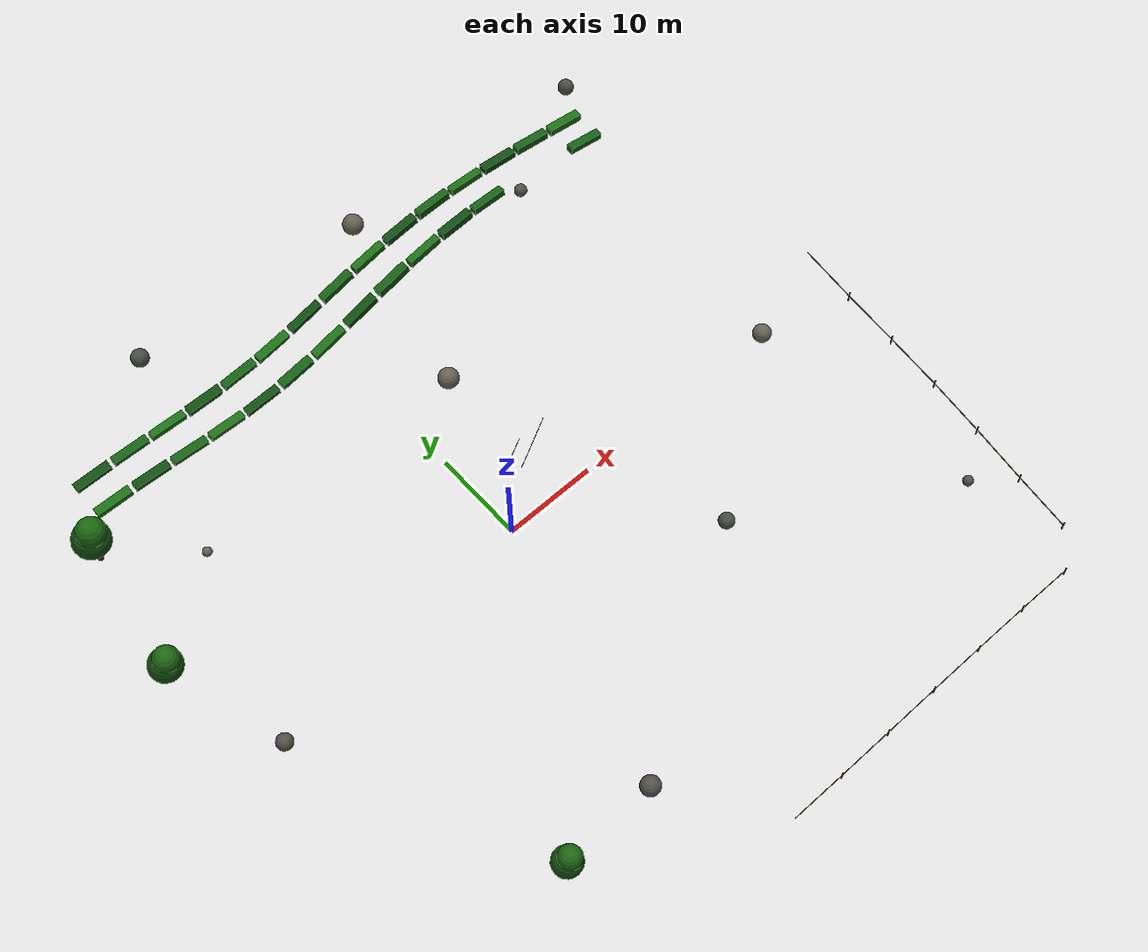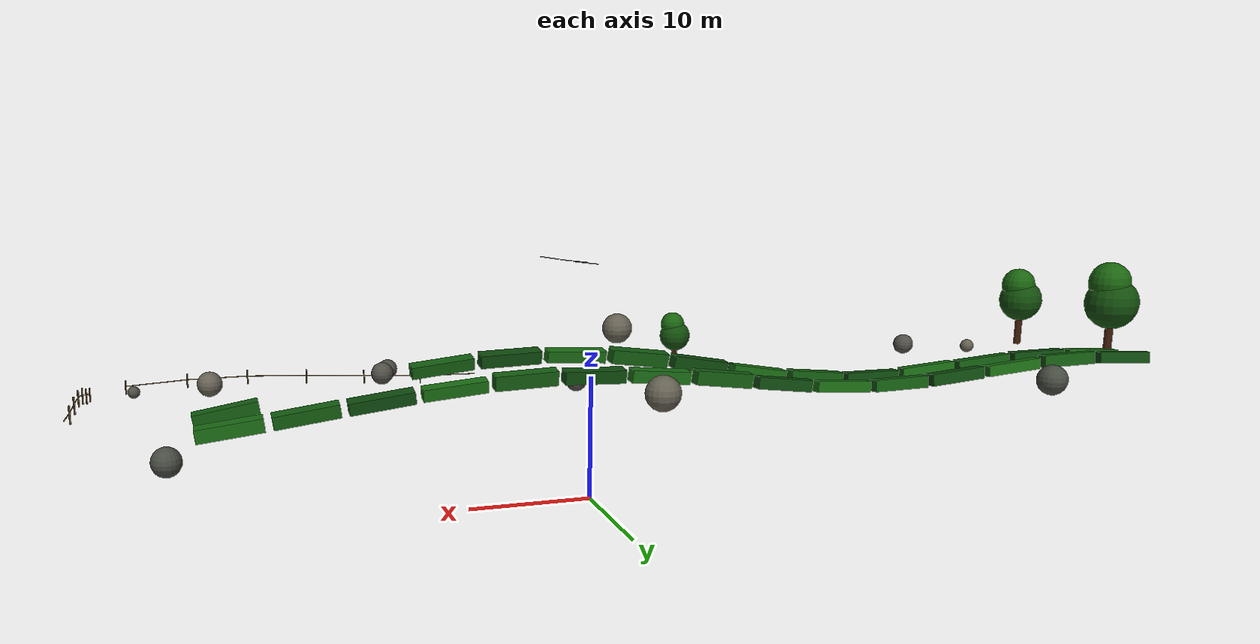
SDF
<sdf version="1.6">
 <world name="mountain_tea_garden_80m">
  <model name="tea_row_14">
   <static>true</static>
   <link name="bush_00">
    <pose>-29 21.1486 14.5462 0.123142 -0.0605314 -0.0586013</pose>
    <collision name="collision">
     <geometry><box><size>3.75 0.892647 0.723056</size></box></geometry>
     <laser_retro>55</laser_retro>
     <surface><friction><ode><mu>1.15</mu><mu2>1.15</mu2></ode></friction></surface>
    </collision>
    <visual name="visual">
     <geometry><box><size>3.75 0.892647 0.723056</size></box></geometry>
     <material>
      <ambient>0.1 0.42 0.075 1</ambient>
      <diffuse>0.1 0.42 0.075 1</diffuse>
      <specular>0.05 0.05 0.05 1</specular>
     </material>
    </visual>
   </link>
   <link name="bush_01">
    <pose>-24.85 20.9266 14.6432 0.10503 0.0156587 -0.0471361</pose>
    <collision name="collision">
     <geometry><box><size>3.75 0.841962 0.712765</size></box></geometry>
     <laser_retro>55</laser_retro>
     <surface><friction><ode><mu>1.15</mu><mu2>1.15</mu2></ode></friction></surface>
    </collision>
    <visual name="visual">
     <geometry><box><size>3.75 0.841962 0.712765</size></box></geometry>
     <material>
      <ambient>0.055 0.29 0.055 1</ambient>
      <diffuse>0.055 0.29 0.055 1</diffuse>
      <specular>0.05 0.05 0.05 1</specular>
     </material>
    </visual>
   </link>
   <link name="bush_02">
    <pose>-20.7 20.7655 14.4231 0.0957155 0.0792144 -0.0295885</pose>
    <collision name="collision">
     <geometry><box><size>3.75 0.793256 0.701677</size></box></geometry>
     <laser_retro>55</laser_retro>
     <surface><friction><ode><mu>1.15</mu><mu2>1.15</mu2></ode></friction></surface>
    </collision>
    <visual name="visual">
     <geometry><box><size>3.75 0.793256 0.701677</size></box></geometry>
     <material>
      <ambient>0.075 0.36 0.065 1</ambient>
      <diffuse>0.075 0.36 0.065 1</diffuse>
      <specular>0.05 0.05 0.05 1</specular>
     </material>
    </visual>
   </link>
   <link name="bush_03">
    <pose>-16.55 20.6862 14.1144 0.0897245 0.0711278 -0.00821036</pose>
    <collision name="collision">
     <geometry><box><size>3.75 0.766633 0.768349</size></box></geometry>
     <laser_retro>55</laser_retro>
     <surface><friction><ode><mu>1.15</mu><mu2>1.15</mu2></ode></friction></surface>
    </collision>
    <visual name="visual">
     <geometry><box><size>3.75 0.766633 0.768349</size></box></geometry>
     <material>
      <ambient>0.1 0.42 0.075 1</ambient>
      <diffuse>0.1 0.42 0.075 1</diffuse>
      <specular>0.05 0.05 0.05 1</specular>
     </material>
    </visual>
   </link>
   <link name="bush_04">
    <pose>-12.4 20.6989 13.9441 0.0747903 -0.0092089 0.0142328</pose>
    <collision name="collision">
     <geometry><box><size>3.75 0.780026 0.721417</size></box></geometry>
     <laser_retro>55</laser_retro>
     <surface><friction><ode><mu>1.15</mu><mu2>1.15</mu2></ode></friction></surface>
    </collision>
    <visual name="visual">
     <geometry><box><size>3.75 0.780026 0.721417</size></box></geometry>
     <material>
      <ambient>0.055 0.29 0.055 1</ambient>
      <diffuse>0.055 0.29 0.055 1</diffuse>
      <specular>0.05 0.05 0.05 1</specular>
     </material>
    </visual>
   </link>
   <link name="bush_05">
    <pose>-8.25 20.8018 14.2241 0.0425712 -0.110287 0.0348304</pose>
    <collision name="collision">
     <geometry><box><size>3.75 0.86623 0.776609</size></box></geometry>
     <laser_retro>55</laser_retro>
     <surface><friction><ode><mu>1.15</mu><mu2>1.15</mu2></ode></friction></surface>
    </collision>
    <visual name="visual">
     <geometry><box><size>3.75 0.86623 0.776609</size></box></geometry>
     <material>
      <ambient>0.075 0.36 0.065 1</ambient>
      <diffuse>0.075 0.36 0.065 1</diffuse>
      <specular>0.05 0.05 0.05 1</specular>
     </material>
    </visual>
   </link>
   <link name="bush_06">
    <pose>-4.1 20.9818 14.8208 -0.00532599 -0.177527 0.0509225</pose>
    <collision name="collision">
     <geometry><box><size>3.75 0.822749 0.72909</size></box></geometry>
     <laser_retro>55</laser_retro>
     <surface><friction><ode><mu>1.15</mu><mu2>1.15</mu2></ode></friction></surface>
    </collision>
    <visual name="visual">
     <geometry><box><size>3.75 0.822749 0.72909</size></box></geometry>
     <material>
      <ambient>0.1 0.42 0.075 1</ambient>
      <diffuse>0.1 0.42 0.075 1</diffuse>
      <specular>0.05 0.05 0.05 1</specular>
     </material>
    </visual>
   </link>
   <link name="bush_07">
    <pose>0.05 21.2157 15.6543 -0.0602046 -0.188998 0.0604493</pose>
    <collision name="collision">
     <geometry><box><size>3.75 0.833949 0.814704</size></box></geometry>
     <laser_retro>55</laser_retro>
     <surface><friction><ode><mu>1.15</mu><mu2>1.15</mu2></ode></friction></surface>
    </collision>
    <visual name="visual">
     <geometry><box><size>3.75 0.833949 0.814704</size></box></geometry>
     <material>
      <ambient>0.055 0.29 0.055 1</ambient>
      <diffuse>0.055 0.29 0.055 1</diffuse>
      <specular>0.05 0.05 0.05 1</specular>
     </material>
    </visual>
   </link>
   <link name="bush_08">
    <pose>4.2 21.4733 16.4139 -0.111729 -0.149638 0.0622027</pose>
    <collision name="collision">
     <geometry><box><size>3.75 0.869858 0.880716</size></box></geometry>
     <laser_retro>55</laser_retro>
     <surface><friction><ode><mu>1.15</mu><mu2>1.15</mu2></ode></friction></surface>
    </collision>
    <visual name="visual">
     <geometry><box><size>3.75 0.869858 0.880716</size></box></geometry>
     <material>
      <ambient>0.075 0.36 0.065 1</ambient>
      <diffuse>0.075 0.36 0.065 1</diffuse>
      <specular>0.05 0.05 0.05 1</specular>
     </material>
    </visual>
   </link>
   <link name="bush_09">
    <pose>8.35 21.7215 16.8272 -0.151276 -0.0758995 0.0559613</pose>
    <collision name="collision">
     <geometry><box><size>3.75 0.760535 0.74805</size></box></geometry>
     <laser_retro>55</laser_retro>
     <surface><friction><ode><mu>1.15</mu><mu2>1.15</mu2></ode></friction></surface>
    </collision>
    <visual name="visual">
     <geometry><box><size>3.75 0.760535 0.74805</size></box></geometry>
     <material>
      <ambient>0.1 0.42 0.075 1</ambient>
      <diffuse>0.1 0.42 0.075 1</diffuse>
      <specular>0.05 0.05 0.05 1</specular>
     </material>
    </visual>
   </link>
   <link name="bush_10">
    <pose>12.5 21.9283 16.9816 -0.173066 0.0113255 0.0425144</pose>
    <collision name="collision">
     <geometry><box><size>3.75 0.866523 0.786534</size></box></geometry>
     <laser_retro>55</laser_retro>
     <surface><friction><ode><mu>1.15</mu><mu2>1.15</mu2></ode></friction></surface>
    </collision>
    <visual name="visual">
     <geometry><box><size>3.75 0.866523 0.786534</size></box></geometry>
     <material>
      <ambient>0.055 0.29 0.055 1</ambient>
      <diffuse>0.055 0.29 0.055 1</diffuse>
      <specular>0.05 0.05 0.05 1</specular>
     </material>
    </visual>
   </link>
   <link name="bush_11">
    <pose>16.65 22.067 16.7333 -0.174058 0.0911377 0.0235759</pose>
    <collision name="collision">
     <geometry><box><size>3.75 0.823379 0.727465</size></box></geometry>
     <laser_retro>55</laser_retro>
     <surface><friction><ode><mu>1.15</mu><mu2>1.15</mu2></ode></friction></surface>
    </collision>
    <visual name="visual">
     <geometry><box><size>3.75 0.823379 0.727465</size></box></geometry>
     <material>
      <ambient>0.075 0.36 0.065 1</ambient>
      <diffuse>0.075 0.36 0.065 1</diffuse>
      <specular>0.05 0.05 0.05 1</specular>
     </material>
    </visual>
   </link>
   <link name="bush_14">
    <pose>29.1 21.9523 14.8152 -0.0545727 0.168946 -0.040142</pose>
    <collision name="collision">
     <geometry><box><size>3.75 0.831678 0.735281</size></box></geometry>
     <laser_retro>55</laser_retro>
     <surface><friction><ode><mu>1.15</mu><mu2>1.15</mu2></ode></friction></surface>
    </collision>
    <visual name="visual">
     <geometry><box><size>3.75 0.831678 0.735281</size></box></geometry>
     <material>
      <ambient>0.075 0.36 0.065 1</ambient>
      <diffuse>0.075 0.36 0.065 1</diffuse>
      <specular>0.05 0.05 0.05 1</specular>
     </material>
    </visual>
   </link>
  </model>
  <model name="tea_row_15">
   <static>true</static>
   <link name="bush_00">
    <pose>-29 24.2402 14.9754 0.144876 -0.0483533 -0.044186</pose>
    <collision name="collision">
     <geometry><box><size>3.75 0.843218 0.76625</size></box></geometry>
     <laser_retro>55</laser_retro>
     <surface><friction><ode><mu>1.15</mu><mu2>1.15</mu2></ode></friction></surface>
    </collision>
    <visual name="visual">
     <geometry><box><size>3.75 0.843218 0.76625</size></box></geometry>
     <material>
      <ambient>0.055 0.29 0.055 1</ambient>
      <diffuse>0.055 0.29 0.055 1</diffuse>
      <specular>0.05 0.05 0.05 1</specular>
     </material>
    </visual>
   </link>
   <link name="bush_01">
    <pose>-24.85 24.0935 15.0627 0.128668 0.0205878 -0.0257098</pose>
    <collision name="collision">
     <geometry><box><size>3.75 0.775642 0.807573</size></box></geometry>
     <laser_retro>55</laser_retro>
     <surface><friction><ode><mu>1.15</mu><mu2>1.15</mu2></ode></friction></surface>
    </collision>
    <visual name="visual">
     <geometry><box><size>3.75 0.775642 0.807573</size></box></geometry>
     <material>
      <ambient>0.075 0.36 0.065 1</ambient>
      <diffuse>0.075 0.36 0.065 1</diffuse>
      <specular>0.05 0.05 0.05 1</specular>
     </material>
    </visual>
   </link>
   <link name="bush_02">
    <pose>-20.7 24.0314 14.7866 0.124398 0.079981 -0.00390354</pose>
    <collision name="collision">
     <geometry><box><size>3.75 0.80116 0.704052</size></box></geometry>
     <laser_retro>55</laser_retro>
     <surface><friction><ode><mu>1.15</mu><mu2>1.15</mu2></ode></friction></surface>
    </collision>
    <visual name="visual">
     <geometry><box><size>3.75 0.80116 0.704052</size></box></geometry>
     <material>
      <ambient>0.1 0.42 0.075 1</ambient>
      <diffuse>0.1 0.42 0.075 1</diffuse>
      <specular>0.05 0.05 0.05 1</specular>
     </material>
    </visual>
   </link>
   <link name="bush_03">
    <pose>-16.55 24.0618 14.4671 0.123881 0.0747512 0.0184092</pose>
    <collision name="collision">
     <geometry><box><size>3.75 0.8799 0.76177</size></box></geometry>
     <laser_retro>55</laser_retro>
     <surface><friction><ode><mu>1.15</mu><mu2>1.15</mu2></ode></friction></surface>
    </collision>
    <visual name="visual">
     <geometry><box><size>3.75 0.8799 0.76177</size></box></geometry>
     <material>
      <ambient>0.055 0.29 0.055 1</ambient>
      <diffuse>0.055 0.29 0.055 1</diffuse>
      <specular>0.05 0.05 0.05 1</specular>
     </material>
    </visual>
   </link>
   <link name="bush_04">
    <pose>-12.4 24.1809 14.2818 0.112964 0.00504747 0.0383355</pose>
    <collision name="collision">
     <geometry><box><size>3.75 0.803156 0.754442</size></box></geometry>
     <laser_retro>55</laser_retro>
     <surface><friction><ode><mu>1.15</mu><mu2>1.15</mu2></ode></friction></surface>
    </collision>
    <visual name="visual">
     <geometry><box><size>3.75 0.803156 0.754442</size></box></geometry>
     <material>
      <ambient>0.075 0.36 0.065 1</ambient>
      <diffuse>0.075 0.36 0.065 1</diffuse>
      <specular>0.05 0.05 0.05 1</specular>
     </material>
    </visual>
   </link>
   <link name="bush_05">
    <pose>-8.25 24.3733 14.4242 0.0838419 -0.081392 0.053306</pose>
    <collision name="collision">
     <geometry><box><size>3.75 0.803804 0.713275</size></box></geometry>
     <laser_retro>55</laser_retro>
     <surface><friction><ode><mu>1.15</mu><mu2>1.15</mu2></ode></friction></surface>
    </collision>
    <visual name="visual">
     <geometry><box><size>3.75 0.803804 0.713275</size></box></geometry>
     <material>
      <ambient>0.1 0.42 0.075 1</ambient>
      <diffuse>0.1 0.42 0.075 1</diffuse>
      <specular>0.05 0.05 0.05 1</specular>
     </material>
    </visual>
   </link>
   <link name="bush_06">
    <pose>-4.1 24.6142 14.9061 0.0389877 -0.136076 0.0614082</pose>
    <collision name="collision">
     <geometry><box><size>3.75 0.767284 0.73649</size></box></geometry>
     <laser_retro>55</laser_retro>
     <surface><friction><ode><mu>1.15</mu><mu2>1.15</mu2></ode></friction></surface>
    </collision>
    <visual name="visual">
     <geometry><box><size>3.75 0.767284 0.73649</size></box></geometry>
     <material>
      <ambient>0.055 0.29 0.055 1</ambient>
      <diffuse>0.055 0.29 0.055 1</diffuse>
      <specular>0.05 0.05 0.05 1</specular>
     </material>
    </visual>
   </link>
   <link name="bush_07">
    <pose>0.05 24.8726 15.5741 -0.0135246 -0.141532 0.0616157</pose>
    <collision name="collision">
     <geometry><box><size>3.75 0.792613 0.87642</size></box></geometry>
     <laser_retro>55</laser_retro>
     <surface><friction><ode><mu>1.15</mu><mu2>1.15</mu2></ode></friction></surface>
    </collision>
    <visual name="visual">
     <geometry><box><size>3.75 0.792613 0.87642</size></box></geometry>
     <material>
      <ambient>0.075 0.36 0.065 1</ambient>
      <diffuse>0.075 0.36 0.065 1</diffuse>
      <specular>0.05 0.05 0.05 1</specular>
     </material>
    </visual>
   </link>
   <link name="bush_08">
    <pose>4.2 25.1152 16.0493 -0.0650552 -0.105258 0.0539025</pose>
    <collision name="collision">
     <geometry><box><size>3.75 0.778956 0.771593</size></box></geometry>
     <laser_retro>55</laser_retro>
     <surface><friction><ode><mu>1.15</mu><mu2>1.15</mu2></ode></friction></surface>
    </collision>
    <visual name="visual">
     <geometry><box><size>3.75 0.778956 0.771593</size></box></geometry>
     <material>
      <ambient>0.1 0.42 0.075 1</ambient>
      <diffuse>0.1 0.42 0.075 1</diffuse>
      <specular>0.05 0.05 0.05 1</specular>
     </material>
    </visual>
   </link>
   <link name="bush_09">
    <pose>8.35 25.3108 16.3748 -0.108327 -0.044225 0.0392452</pose>
    <collision name="collision">
     <geometry><box><size>3.75 0.845545 0.789404</size></box></geometry>
     <laser_retro>55</laser_retro>
     <surface><friction><ode><mu>1.15</mu><mu2>1.15</mu2></ode></friction></surface>
    </collision>
    <visual name="visual">
     <geometry><box><size>3.75 0.845545 0.789404</size></box></geometry>
     <material>
      <ambient>0.055 0.29 0.055 1</ambient>
      <diffuse>0.055 0.29 0.055 1</diffuse>
      <specular>0.05 0.05 0.05 1</specular>
     </material>
    </visual>
   </link>
   <link name="bush_10">
    <pose>12.5 25.4341 16.4661 -0.137646 0.023395 0.0195152</pose>
    <collision name="collision">
     <geometry><box><size>3.75 0.772675 0.886743</size></box></geometry>
     <laser_retro>55</laser_retro>
     <surface><friction><ode><mu>1.15</mu><mu2>1.15</mu2></ode></friction></surface>
    </collision>
    <visual name="visual">
     <geometry><box><size>3.75 0.772675 0.886743</size></box></geometry>
     <material>
      <ambient>0.075 0.36 0.065 1</ambient>
      <diffuse>0.075 0.36 0.065 1</diffuse>
      <specular>0.05 0.05 0.05 1</specular>
     </material>
    </visual>
   </link>
   <link name="bush_11">
    <pose>16.65 25.4693 16.1615 -0.148883 0.0819726 -0.00274416</pose>
    <collision name="collision">
     <geometry><box><size>3.75 0.764281 0.726211</size></box></geometry>
     <laser_retro>55</laser_retro>
     <surface><friction><ode><mu>1.15</mu><mu2>1.15</mu2></ode></friction></surface>
    </collision>
    <visual name="visual">
     <geometry><box><size>3.75 0.764281 0.726211</size></box></geometry>
     <material>
      <ambient>0.1 0.42 0.075 1</ambient>
      <diffuse>0.1 0.42 0.075 1</diffuse>
      <specular>0.05 0.05 0.05 1</specular>
     </material>
    </visual>
   </link>
   <link name="bush_12">
    <pose>20.8 25.4118 15.7371 -0.13966 0.120704 -0.0246476</pose>
    <collision name="collision">
     <geometry><box><size>3.75 0.888122 0.737919</size></box></geometry>
     <laser_retro>55</laser_retro>
     <surface><friction><ode><mu>1.15</mu><mu2>1.15</mu2></ode></friction></surface>
    </collision>
    <visual name="visual">
     <geometry><box><size>3.75 0.888122 0.737919</size></box></geometry>
     <material>
      <ambient>0.055 0.29 0.055 1</ambient>
      <diffuse>0.055 0.29 0.055 1</diffuse>
      <specular>0.05 0.05 0.05 1</specular>
     </material>
    </visual>
   </link>
   <link name="bush_13">
    <pose>24.95 25.2691 15.2215 -0.109869 0.134432 -0.043358</pose>
    <collision name="collision">
     <geometry><box><size>3.75 0.838855 0.790381</size></box></geometry>
     <laser_retro>55</laser_retro>
     <surface><friction><ode><mu>1.15</mu><mu2>1.15</mu2></ode></friction></surface>
    </collision>
    <visual name="visual">
     <geometry><box><size>3.75 0.838855 0.790381</size></box></geometry>
     <material>
      <ambient>0.075 0.36 0.065 1</ambient>
      <diffuse>0.075 0.36 0.065 1</diffuse>
      <specular>0.05 0.05 0.05 1</specular>
     </material>
    </visual>
   </link>
   <link name="bush_14">
    <pose>29.1 25.0595 14.6855 -0.0623796 0.123138 -0.0564689</pose>
    <collision name="collision">
     <geometry><box><size>3.75 0.882117 0.811225</size></box></geometry>
     <laser_retro>55</laser_retro>
     <surface><friction><ode><mu>1.15</mu><mu2>1.15</mu2></ode></friction></surface>
    </collision>
    <visual name="visual">
     <geometry><box><size>3.75 0.882117 0.811225</size></box></geometry>
     <material>
      <ambient>0.1 0.42 0.075 1</ambient>
      <diffuse>0.1 0.42 0.075 1</diffuse>
      <specular>0.05 0.05 0.05 1</specular>
     </material>
    </visual>
   </link>
  </model>
  <model name="rock_00">
   <static>true</static>
   <link name="body">
    <pose>-31 -5.5 9.79271 0 0 0</pose>
    <collision name="collision">
     <geometry><sphere><radius>0.845622</radius></sphere></geometry>
     <laser_retro>70</laser_retro>
     <surface><friction><ode><mu>1.15</mu><mu2>1.15</mu2></ode></friction></surface>
    </collision>
    <visual name="visual">
     <geometry><sphere><radius>0.845622</radius></sphere></geometry>
     <material>
      <ambient>0.31 0.3 0.27 1</ambient>
      <diffuse>0.31 0.3 0.27 1</diffuse>
      <specular>0.05 0.05 0.05 1</specular>
     </material>
    </visual>
   </link>
  </model>
  <model name="rock_01">
   <static>true</static>
   <link name="body">
    <pose>-25.5 12 13.4849 0 0 0</pose>
    <collision name="collision">
     <geometry><sphere><radius>0.477506</radius></sphere></geometry>
     <laser_retro>70</laser_retro>
     <surface><friction><ode><mu>1.15</mu><mu2>1.15</mu2></ode></friction></surface>
    </collision>
    <visual name="visual">
     <geometry><sphere><radius>0.477506</radius></sphere></geometry>
     <material>
      <ambient>0.39 0.37 0.32 1</ambient>
      <diffuse>0.39 0.37 0.32 1</diffuse>
      <specular>0.05 0.05 0.05 1</specular>
     </material>
    </visual>
   </link>
  </model>
  <model name="rock_02">
   <static>true</static>
   <link name="body">
    <pose>-18.5 31 15.6521 0 0 0</pose>
    <collision name="collision">
     <geometry><sphere><radius>0.910013</radius></sphere></geometry>
     <laser_retro>70</laser_retro>
     <surface><friction><ode><mu>1.15</mu><mu2>1.15</mu2></ode></friction></surface>
    </collision>
    <visual name="visual">
     <geometry><sphere><radius>0.910013</radius></sphere></geometry>
     <material>
      <ambient>0.27 0.29 0.25 1</ambient>
      <diffuse>0.27 0.29 0.25 1</diffuse>
      <specular>0.05 0.05 0.05 1</specular>
     </material>
    </visual>
   </link>
  </model>
  <model name="rock_03">
   <static>true</static>
   <link name="body">
    <pose>-8 -28.5 2.66808 0 0 0</pose>
    <collision name="collision">
     <geometry><sphere><radius>1.04245</radius></sphere></geometry>
     <laser_retro>70</laser_retro>
     <surface><friction><ode><mu>1.15</mu><mu2>1.15</mu2></ode></friction></surface>
    </collision>
    <visual name="visual">
     <geometry><sphere><radius>1.04245</radius></sphere></geometry>
     <material>
      <ambient>0.31 0.3 0.27 1</ambient>
      <diffuse>0.31 0.3 0.27 1</diffuse>
      <specular>0.05 0.05 0.05 1</specular>
     </material>
    </visual>
   </link>
  </model>
  <model name="rock_04">
   <static>true</static>
   <link name="body">
    <pose>5.5 29 15.9983 0 0 0</pose>
    <collision name="collision">
     <geometry><sphere><radius>1.04385</radius></sphere></geometry>
     <laser_retro>70</laser_retro>
     <surface><friction><ode><mu>1.15</mu><mu2>1.15</mu2></ode></friction></surface>
    </collision>
    <visual name="visual">
     <geometry><sphere><radius>1.04385</radius></sphere></geometry>
     <material>
      <ambient>0.39 0.37 0.32 1</ambient>
      <diffuse>0.39 0.37 0.32 1</diffuse>
      <specular>0.05 0.05 0.05 1</specular>
     </material>
    </visual>
   </link>
  </model>
  <model name="rock_05">
   <static>true</static>
   <link name="body">
    <pose>13.5 -15.5 8.13338 0 0 0</pose>
    <collision name="collision">
     <geometry><sphere><radius>0.825742</radius></sphere></geometry>
     <laser_retro>70</laser_retro>
     <surface><friction><ode><mu>1.15</mu><mu2>1.15</mu2></ode></friction></surface>
    </collision>
    <visual name="visual">
     <geometry><sphere><radius>0.825742</radius></sphere></geometry>
     <material>
      <ambient>0.27 0.29 0.25 1</ambient>
      <diffuse>0.27 0.29 0.25 1</diffuse>
      <specular>0.05 0.05 0.05 1</specular>
     </material>
    </visual>
   </link>
  </model>
  <model name="rock_06">
   <static>true</static>
   <link name="body">
    <pose>20 21 16.3056 0 0 0</pose>
    <collision name="collision">
     <geometry><sphere><radius>0.646472</radius></sphere></geometry>
     <laser_retro>70</laser_retro>
     <surface><friction><ode><mu>1.15</mu><mu2>1.15</mu2></ode></friction></surface>
    </collision>
    <visual name="visual">
     <geometry><sphere><radius>0.646472</radius></sphere></geometry>
     <material>
      <ambient>0.31 0.3 0.27 1</ambient>
      <diffuse>0.31 0.3 0.27 1</diffuse>
      <specular>0.05 0.05 0.05 1</specular>
     </material>
    </visual>
   </link>
  </model>
  <model name="rock_07">
   <static>true</static>
   <link name="body">
    <pose>29 -4 10.4608 0 0 0</pose>
    <collision name="collision">
     <geometry><sphere><radius>0.946404</radius></sphere></geometry>
     <laser_retro>70</laser_retro>
     <surface><friction><ode><mu>1.15</mu><mu2>1.15</mu2></ode></friction></surface>
    </collision>
    <visual name="visual">
     <geometry><sphere><radius>0.946404</radius></sphere></geometry>
     <material>
      <ambient>0.39 0.37 0.32 1</ambient>
      <diffuse>0.39 0.37 0.32 1</diffuse>
      <specular>0.05 0.05 0.05 1</specular>
     </material>
    </visual>
   </link>
  </model>
  <model name="rock_08">
   <static>true</static>
   <link name="body">
    <pose>32.5 28.5 14.1079 0 0 0</pose>
    <collision name="collision">
     <geometry><sphere><radius>0.815579</radius></sphere></geometry>
     <laser_retro>70</laser_retro>
     <surface><friction><ode><mu>1.15</mu><mu2>1.15</mu2></ode></friction></surface>
    </collision>
    <visual name="visual">
     <geometry><sphere><radius>0.815579</radius></sphere></geometry>
     <material>
      <ambient>0.27 0.29 0.25 1</ambient>
      <diffuse>0.27 0.29 0.25 1</diffuse>
      <specular>0.05 0.05 0.05 1</specular>
     </material>
    </visual>
   </link>
  </model>
  <model name="rock_09">
   <static>true</static>
   <link name="body">
    <pose>35 -27 4.7591 0 0 0</pose>
    <collision name="collision">
     <geometry><sphere><radius>0.558004</radius></sphere></geometry>
     <laser_retro>70</laser_retro>
     <surface><friction><ode><mu>1.15</mu><mu2>1.15</mu2></ode></friction></surface>
    </collision>
    <visual name="visual">
     <geometry><sphere><radius>0.558004</radius></sphere></geometry>
     <material>
      <ambient>0.31 0.3 0.27 1</ambient>
      <diffuse>0.31 0.3 0.27 1</diffuse>
      <specular>0.05 0.05 0.05 1</specular>
     </material>
    </visual>
   </link>
  </model>
  <model name="rock_10">
   <static>true</static>
   <link name="body">
    <pose>1.5 10 15.896 0 0 0</pose>
    <collision name="collision">
     <geometry><sphere><radius>1.04206</radius></sphere></geometry>
     <laser_retro>70</laser_retro>
     <surface><friction><ode><mu>1.15</mu><mu2>1.15</mu2></ode></friction></surface>
    </collision>
    <visual name="visual">
     <geometry><sphere><radius>1.04206</radius></sphere></geometry>
     <material>
      <ambient>0.39 0.37 0.32 1</ambient>
      <diffuse>0.39 0.37 0.32 1</diffuse>
      <specular>0.05 0.05 0.05 1</specular>
     </material>
    </visual>
   </link>
  </model>
  <model name="tree_00">
   <static>true</static>
   <link name="trunk">
    <pose>-35 5 13.0546 0 0 0</pose>
    <collision name="collision">
     <geometry><cylinder><radius>0.2755</radius><length>2.688</length></cylinder></geometry>
     <laser_retro>70</laser_retro>
     <surface><friction><ode><mu>1.15</mu><mu2>1.15</mu2></ode></friction></surface>
    </collision>
    <visual name="visual">
     <geometry><cylinder><radius>0.2755</radius><length>2.688</length></cylinder></geometry>
     <material>
      <ambient>0.24 0.105 0.035 1</ambient>
      <diffuse>0.24 0.105 0.035 1</diffuse>
      <specular>0.05 0.05 0.05 1</specular>
     </material>
    </visual>
   </link>
   <link name="crown_low">
    <pose>-35 5 15.3061 0 0 0</pose>
    <collision name="collision">
     <geometry><sphere><radius>1.65</radius></sphere></geometry>
     <laser_retro>70</laser_retro>
     <surface><friction><ode><mu>1.15</mu><mu2>1.15</mu2></ode></friction></surface>
    </collision>
    <visual name="visual">
     <geometry><sphere><radius>1.65</radius></sphere></geometry>
     <material>
      <ambient>0.07 0.3 0.045 1</ambient>
      <diffuse>0.07 0.3 0.045 1</diffuse>
      <specular>0.05 0.05 0.05 1</specular>
     </material>
    </visual>
   </link>
   <link name="crown_high">
    <pose>-34.78 4.87 16.5516 0 0 0</pose>
    <collision name="collision">
     <geometry><sphere><radius>1.287</radius></sphere></geometry>
     <laser_retro>70</laser_retro>
     <surface><friction><ode><mu>1.15</mu><mu2>1.15</mu2></ode></friction></surface>
    </collision>
    <visual name="visual">
     <geometry><sphere><radius>1.287</radius></sphere></geometry>
     <material>
      <ambient>0.1 0.39 0.06 1</ambient>
      <diffuse>0.1 0.39 0.06 1</diffuse>
      <specular>0.05 0.05 0.05 1</specular>
     </material>
    </visual>
   </link>
  </model>
  <model name="tree_01">
   <static>true</static>
   <link name="trunk">
    <pose>-33 18 14.8148 0 0 0</pose>
    <collision name="collision">
     <geometry><cylinder><radius>0.2895</radius><length>3.072</length></cylinder></geometry>
     <laser_retro>70</laser_retro>
     <surface><friction><ode><mu>1.15</mu><mu2>1.15</mu2></ode></friction></surface>
    </collision>
    <visual name="visual">
     <geometry><cylinder><radius>0.2895</radius><length>3.072</length></cylinder></geometry>
     <material>
      <ambient>0.24 0.105 0.035 1</ambient>
      <diffuse>0.24 0.105 0.035 1</diffuse>
      <specular>0.05 0.05 0.05 1</specular>
     </material>
    </visual>
   </link>
   <link name="crown_low">
    <pose>-33 18 17.3683 0 0 0</pose>
    <collision name="collision">
     <geometry><sphere><radius>1.85</radius></sphere></geometry>
     <laser_retro>70</laser_retro>
     <surface><friction><ode><mu>1.15</mu><mu2>1.15</mu2></ode></friction></surface>
    </collision>
    <visual name="visual">
     <geometry><sphere><radius>1.85</radius></sphere></geometry>
     <material>
      <ambient>0.07 0.3 0.045 1</ambient>
      <diffuse>0.07 0.3 0.045 1</diffuse>
      <specular>0.05 0.05 0.05 1</specular>
     </material>
    </visual>
   </link>
   <link name="crown_high">
    <pose>-32.78 17.87 18.8278 0 0 0</pose>
    <collision name="collision">
     <geometry><sphere><radius>1.443</radius></sphere></geometry>
     <laser_retro>70</laser_retro>
     <surface><friction><ode><mu>1.15</mu><mu2>1.15</mu2></ode></friction></surface>
    </collision>
    <visual name="visual">
     <geometry><sphere><radius>1.443</radius></sphere></geometry>
     <material>
      <ambient>0.1 0.39 0.06 1</ambient>
      <diffuse>0.1 0.39 0.06 1</diffuse>
      <specular>0.05 0.05 0.05 1</specular>
     </material>
    </visual>
   </link>
  </model>
  <model name="tree_02">
   <static>true</static>
   <link name="trunk">
    <pose>-19 -29.5 4.42083 0 0 0</pose>
    <collision name="collision">
     <geometry><cylinder><radius>0.2685</radius><length>2.544</length></cylinder></geometry>
     <laser_retro>70</laser_retro>
     <surface><friction><ode><mu>1.15</mu><mu2>1.15</mu2></ode></friction></surface>
    </collision>
    <visual name="visual">
     <geometry><cylinder><radius>0.2685</radius><length>2.544</length></cylinder></geometry>
     <material>
      <ambient>0.24 0.105 0.035 1</ambient>
      <diffuse>0.24 0.105 0.035 1</diffuse>
      <specular>0.05 0.05 0.05 1</specular>
     </material>
    </visual>
   </link>
   <link name="crown_low">
    <pose>-19 -29.5 6.54533 0 0 0</pose>
    <collision name="collision">
     <geometry><sphere><radius>1.55</radius></sphere></geometry>
     <laser_retro>70</laser_retro>
     <surface><friction><ode><mu>1.15</mu><mu2>1.15</mu2></ode></friction></surface>
    </collision>
    <visual name="visual">
     <geometry><sphere><radius>1.55</radius></sphere></geometry>
     <material>
      <ambient>0.07 0.3 0.045 1</ambient>
      <diffuse>0.07 0.3 0.045 1</diffuse>
      <specular>0.05 0.05 0.05 1</specular>
     </material>
    </visual>
   </link>
   <link name="crown_high">
    <pose>-18.78 -29.63 7.73583 0 0 0</pose>
    <collision name="collision">
     <geometry><sphere><radius>1.209</radius></sphere></geometry>
     <laser_retro>70</laser_retro>
     <surface><friction><ode><mu>1.15</mu><mu2>1.15</mu2></ode></friction></surface>
    </collision>
    <visual name="visual">
     <geometry><sphere><radius>1.209</radius></sphere></geometry>
     <material>
      <ambient>0.1 0.39 0.06 1</ambient>
      <diffuse>0.1 0.39 0.06 1</diffuse>
      <specular>0.05 0.05 0.05 1</specular>
     </material>
    </visual>
   </link>
  </model>
  <model name="power_conductors">
   <static>true</static>
   <link name="wire_s2_c0_p0">
    <pose>0.658758 -2.09906 18.9088 0 1.40129 0.441179</pose>
    <collision name="collision">
     <geometry><cylinder><radius>0.027</radius><length>2.52443</length></cylinder></geometry>
     <laser_retro>95</laser_retro>
     <surface><friction><ode><mu>1.15</mu><mu2>1.15</mu2></ode></friction></surface>
    </collision>
    <visual name="visual">
     <geometry><cylinder><radius>0.027</radius><length>2.52443</length></cylinder></geometry>
     <material>
      <ambient>0.22 0.24 0.24 1</ambient>
      <diffuse>0.22 0.24 0.24 1</diffuse>
      <specular>0.05 0.05 0.05 1</specular>
     </material>
    </visual>
   </link>
   <link name="wire_s2_c0_p1">
    <pose>2.90876 -1.03656 19.3734 0 1.3712 0.441179</pose>
    <collision name="collision">
     <geometry><cylinder><radius>0.027</radius><length>2.53866</length></cylinder></geometry>
     <laser_retro>95</laser_retro>
     <surface><friction><ode><mu>1.15</mu><mu2>1.15</mu2></ode></friction></surface>
    </collision>
    <visual name="visual">
     <geometry><cylinder><radius>0.027</radius><length>2.53866</length></cylinder></geometry>
     <material>
      <ambient>0.22 0.24 0.24 1</ambient>
      <diffuse>0.22 0.24 0.24 1</diffuse>
      <specular>0.05 0.05 0.05 1</specular>
     </material>
    </visual>
   </link>
   <link name="wire_s2_c1_p0">
    <pose>0.125 -0.96875 18.9088 0 1.40129 0.441179</pose>
    <collision name="collision">
     <geometry><cylinder><radius>0.027</radius><length>2.52443</length></cylinder></geometry>
     <laser_retro>95</laser_retro>
     <surface><friction><ode><mu>1.15</mu><mu2>1.15</mu2></ode></friction></surface>
    </collision>
    <visual name="visual">
     <geometry><cylinder><radius>0.027</radius><length>2.52443</length></cylinder></geometry>
     <material>
      <ambient>0.22 0.24 0.24 1</ambient>
      <diffuse>0.22 0.24 0.24 1</diffuse>
      <specular>0.05 0.05 0.05 1</specular>
     </material>
    </visual>
   </link>
  </model>
  <model name="perimeter_fence">
   <static>true</static>
   <link name="south_post_07">
    <pose>6 -39.3 1.56088 0 0 0</pose>
    <collision name="collision">
     <geometry><cylinder><radius>0.075</radius><length>1.45</length></cylinder></geometry>
     <laser_retro>70</laser_retro>
     <surface><friction><ode><mu>1.15</mu><mu2>1.15</mu2></ode></friction></surface>
    </collision>
    <visual name="visual">
     <geometry><cylinder><radius>0.075</radius><length>1.45</length></cylinder></geometry>
     <material>
      <ambient>0.3 0.22 0.12 1</ambient>
      <diffuse>0.3 0.22 0.12 1</diffuse>
      <specular>0.05 0.05 0.05 1</specular>
     </material>
    </visual>
   </link>
   <link name="south_post_08">
    <pose>12 -39.3 1.94613 0 0 0</pose>
    <collision name="collision">
     <geometry><cylinder><radius>0.075</radius><length>1.45</length></cylinder></geometry>
     <laser_retro>70</laser_retro>
     <surface><friction><ode><mu>1.15</mu><mu2>1.15</mu2></ode></friction></surface>
    </collision>
    <visual name="visual">
     <geometry><cylinder><radius>0.075</radius><length>1.45</length></cylinder></geometry>
     <material>
      <ambient>0.3 0.22 0.12 1</ambient>
      <diffuse>0.3 0.22 0.12 1</diffuse>
      <specular>0.05 0.05 0.05 1</specular>
     </material>
    </visual>
   </link>
   <link name="south_post_09">
    <pose>18 -39.3 2.38819 0 0 0</pose>
    <collision name="collision">
     <geometry><cylinder><radius>0.075</radius><length>1.45</length></cylinder></geometry>
     <laser_retro>70</laser_retro>
     <surface><friction><ode><mu>1.15</mu><mu2>1.15</mu2></ode></friction></surface>
    </collision>
    <visual name="visual">
     <geometry><cylinder><radius>0.075</radius><length>1.45</length></cylinder></geometry>
     <material>
      <ambient>0.3 0.22 0.12 1</ambient>
      <diffuse>0.3 0.22 0.12 1</diffuse>
      <specular>0.05 0.05 0.05 1</specular>
     </material>
    </visual>
   </link>
   <link name="south_post_10">
    <pose>24 -39.3 2.68408 0 0 0</pose>
    <collision name="collision">
     <geometry><cylinder><radius>0.075</radius><length>1.45</length></cylinder></geometry>
     <laser_retro>70</laser_retro>
     <surface><friction><ode><mu>1.15</mu><mu2>1.15</mu2></ode></friction></surface>
    </collision>
    <visual name="visual">
     <geometry><cylinder><radius>0.075</radius><length>1.45</length></cylinder></geometry>
     <material>
      <ambient>0.3 0.22 0.12 1</ambient>
      <diffuse>0.3 0.22 0.12 1</diffuse>
      <specular>0.05 0.05 0.05 1</specular>
     </material>
    </visual>
   </link>
   <link name="south_post_11">
    <pose>30 -39.3 2.69363 0 0 0</pose>
    <collision name="collision">
     <geometry><cylinder><radius>0.075</radius><length>1.45</length></cylinder></geometry>
     <laser_retro>70</laser_retro>
     <surface><friction><ode><mu>1.15</mu><mu2>1.15</mu2></ode></friction></surface>
    </collision>
    <visual name="visual">
     <geometry><cylinder><radius>0.075</radius><length>1.45</length></cylinder></geometry>
     <material>
      <ambient>0.3 0.22 0.12 1</ambient>
      <diffuse>0.3 0.22 0.12 1</diffuse>
      <specular>0.05 0.05 0.05 1</specular>
     </material>
    </visual>
   </link>
   <link name="south_post_12">
    <pose>36 -39.3 2.397 0 0 0</pose>
    <collision name="collision">
     <geometry><cylinder><radius>0.075</radius><length>1.45</length></cylinder></geometry>
     <laser_retro>70</laser_retro>
     <surface><friction><ode><mu>1.15</mu><mu2>1.15</mu2></ode></friction></surface>
    </collision>
    <visual name="visual">
     <geometry><cylinder><radius>0.075</radius><length>1.45</length></cylinder></geometry>
     <material>
      <ambient>0.3 0.22 0.12 1</ambient>
      <diffuse>0.3 0.22 0.12 1</diffuse>
      <specular>0.05 0.05 0.05 1</specular>
     </material>
    </visual>
   </link>
   <link name="south_rail_06">
    <pose>3 -39.3 1.61416 0 1.54689 0</pose>
    <collision name="collision">
     <geometry><cylinder><radius>0.045</radius><length>6.00171</length></cylinder></geometry>
     <laser_retro>45</laser_retro>
     <surface><friction><ode><mu>1.15</mu><mu2>1.15</mu2></ode></friction></surface>
    </collision>
    <visual name="visual">
     <geometry><cylinder><radius>0.045</radius><length>6.00171</length></cylinder></geometry>
     <material>
      <ambient>0.36 0.27 0.14 1</ambient>
      <diffuse>0.36 0.27 0.14 1</diffuse>
      <specular>0.05 0.05 0.05 1</specular>
     </material>
    </visual>
   </link>
   <link name="south_rail_07">
    <pose>9 -39.3 1.87851 0 1.50668 0</pose>
    <collision name="collision">
     <geometry><cylinder><radius>0.045</radius><length>6.01235</length></cylinder></geometry>
     <laser_retro>45</laser_retro>
     <surface><friction><ode><mu>1.15</mu><mu2>1.15</mu2></ode></friction></surface>
    </collision>
    <visual name="visual">
     <geometry><cylinder><radius>0.045</radius><length>6.01235</length></cylinder></geometry>
     <material>
      <ambient>0.36 0.27 0.14 1</ambient>
      <diffuse>0.36 0.27 0.14 1</diffuse>
      <specular>0.05 0.05 0.05 1</specular>
     </material>
    </visual>
   </link>
   <link name="south_rail_08">
    <pose>15 -39.3 2.29216 0 1.49725 0</pose>
    <collision name="collision">
     <geometry><cylinder><radius>0.045</radius><length>6.01626</length></cylinder></geometry>
     <laser_retro>45</laser_retro>
     <surface><friction><ode><mu>1.15</mu><mu2>1.15</mu2></ode></friction></surface>
    </collision>
    <visual name="visual">
     <geometry><cylinder><radius>0.045</radius><length>6.01626</length></cylinder></geometry>
     <material>
      <ambient>0.36 0.27 0.14 1</ambient>
      <diffuse>0.36 0.27 0.14 1</diffuse>
      <specular>0.05 0.05 0.05 1</specular>
     </material>
    </visual>
   </link>
   <link name="south_rail_09">
    <pose>21 -39.3 2.66114 0 1.52152 0</pose>
    <collision name="collision">
     <geometry><cylinder><radius>0.045</radius><length>6.00729</length></cylinder></geometry>
     <laser_retro>45</laser_retro>
     <surface><friction><ode><mu>1.15</mu><mu2>1.15</mu2></ode></friction></surface>
    </collision>
    <visual name="visual">
     <geometry><cylinder><radius>0.045</radius><length>6.00729</length></cylinder></geometry>
     <material>
      <ambient>0.36 0.27 0.14 1</ambient>
      <diffuse>0.36 0.27 0.14 1</diffuse>
      <specular>0.05 0.05 0.05 1</specular>
     </material>
    </visual>
   </link>
   <link name="south_rail_10">
    <pose>27 -39.3 2.81386 0 1.56921 0</pose>
    <collision name="collision">
     <geometry><cylinder><radius>0.045</radius><length>6.00001</length></cylinder></geometry>
     <laser_retro>45</laser_retro>
     <surface><friction><ode><mu>1.15</mu><mu2>1.15</mu2></ode></friction></surface>
    </collision>
    <visual name="visual">
     <geometry><cylinder><radius>0.045</radius><length>6.00001</length></cylinder></geometry>
     <material>
      <ambient>0.36 0.27 0.14 1</ambient>
      <diffuse>0.36 0.27 0.14 1</diffuse>
      <specular>0.05 0.05 0.05 1</specular>
     </material>
    </visual>
   </link>
   <link name="south_rail_11">
    <pose>33 -39.3 2.67031 0 1.6202 0</pose>
    <collision name="collision">
     <geometry><cylinder><radius>0.045</radius><length>6.00733</length></cylinder></geometry>
     <laser_retro>45</laser_retro>
     <surface><friction><ode><mu>1.15</mu><mu2>1.15</mu2></ode></friction></surface>
    </collision>
    <visual name="visual">
     <geometry><cylinder><radius>0.045</radius><length>6.00733</length></cylinder></geometry>
     <material>
      <ambient>0.36 0.27 0.14 1</ambient>
      <diffuse>0.36 0.27 0.14 1</diffuse>
      <specular>0.05 0.05 0.05 1</specular>
     </material>
    </visual>
   </link>
   <link name="east_post_00">
    <pose>39.3 -36 2.66004 0 0 0</pose>
    <collision name="collision">
     <geometry><cylinder><radius>0.075</radius><length>1.45</length></cylinder></geometry>
     <laser_retro>70</laser_retro>
     <surface><friction><ode><mu>1.15</mu><mu2>1.15</mu2></ode></friction></surface>
    </collision>
    <visual name="visual">
     <geometry><cylinder><radius>0.075</radius><length>1.45</length></cylinder></geometry>
     <material>
      <ambient>0.3 0.22 0.12 1</ambient>
      <diffuse>0.3 0.22 0.12 1</diffuse>
      <specular>0.05 0.05 0.05 1</specular>
     </material>
    </visual>
   </link>
   <link name="east_post_01">
    <pose>39.3 -30 3.95201 0 0 0</pose>
    <collision name="collision">
     <geometry><cylinder><radius>0.075</radius><length>1.45</length></cylinder></geometry>
     <laser_retro>70</laser_retro>
     <surface><friction><ode><mu>1.15</mu><mu2>1.15</mu2></ode></friction></surface>
    </collision>
    <visual name="visual">
     <geometry><cylinder><radius>0.075</radius><length>1.45</length></cylinder></geometry>
     <material>
      <ambient>0.3 0.22 0.12 1</ambient>
      <diffuse>0.3 0.22 0.12 1</diffuse>
      <specular>0.05 0.05 0.05 1</specular>
     </material>
    </visual>
   </link>
   <link name="east_post_02">
    <pose>39.3 -24 5.40932 0 0 0</pose>
    <collision name="collision">
     <geometry><cylinder><radius>0.075</radius><length>1.45</length></cylinder></geometry>
     <laser_retro>70</laser_retro>
     <surface><friction><ode><mu>1.15</mu><mu2>1.15</mu2></ode></friction></surface>
    </collision>
    <visual name="visual">
     <geometry><cylinder><radius>0.075</radius><length>1.45</length></cylinder></geometry>
     <material>
      <ambient>0.3 0.22 0.12 1</ambient>
      <diffuse>0.3 0.22 0.12 1</diffuse>
      <specular>0.05 0.05 0.05 1</specular>
     </material>
    </visual>
   </link>
   <link name="east_post_03">
    <pose>39.3 -18 6.64605 0 0 0</pose>
    <collision name="collision">
     <geometry><cylinder><radius>0.075</radius><length>1.45</length></cylinder></geometry>
     <laser_retro>70</laser_retro>
     <surface><friction><ode><mu>1.15</mu><mu2>1.15</mu2></ode></friction></surface>
    </collision>
    <visual name="visual">
     <geometry><cylinder><radius>0.075</radius><length>1.45</length></cylinder></geometry>
     <material>
      <ambient>0.3 0.22 0.12 1</ambient>
      <diffuse>0.3 0.22 0.12 1</diffuse>
      <specular>0.05 0.05 0.05 1</specular>
     </material>
    </visual>
   </link>
   <link name="east_post_04">
    <pose>39.3 -12 7.53278 0 0 0</pose>
    <collision name="collision">
     <geometry><cylinder><radius>0.075</radius><length>1.45</length></cylinder></geometry>
     <laser_retro>70</laser_retro>
     <surface><friction><ode><mu>1.15</mu><mu2>1.15</mu2></ode></friction></surface>
    </collision>
    <visual name="visual">
     <geometry><cylinder><radius>0.075</radius><length>1.45</length></cylinder></geometry>
     <material>
      <ambient>0.3 0.22 0.12 1</ambient>
      <diffuse>0.3 0.22 0.12 1</diffuse>
      <specular>0.05 0.05 0.05 1</specular>
     </material>
    </visual>
   </link>
   <link name="east_post_05">
    <pose>39.3 -6 8.29789 0 0 0</pose>
    <collision name="collision">
     <geometry><cylinder><radius>0.075</radius><length>1.45</length></cylinder></geometry>
     <laser_retro>70</laser_retro>
     <surface><friction><ode><mu>1.15</mu><mu2>1.15</mu2></ode></friction></surface>
    </collision>
    <visual name="visual">
     <geometry><cylinder><radius>0.075</radius><length>1.45</length></cylinder></geometry>
     <material>
      <ambient>0.3 0.22 0.12 1</ambient>
      <diffuse>0.3 0.22 0.12 1</diffuse>
      <specular>0.05 0.05 0.05 1</specular>
     </material>
    </visual>
   </link>
   <link name="east_rail_00">
    <pose>39.3 -33 3.43102 0 1.35871 1.5708</pose>
    <collision name="collision">
     <geometry><cylinder><radius>0.045</radius><length>6.13752</length></cylinder></geometry>
     <laser_retro>45</laser_retro>
     <surface><friction><ode><mu>1.15</mu><mu2>1.15</mu2></ode></friction></surface>
    </collision>
    <visual name="visual">
     <geometry><cylinder><radius>0.045</radius><length>6.13752</length></cylinder></geometry>
     <material>
      <ambient>0.36 0.27 0.14 1</ambient>
      <diffuse>0.36 0.27 0.14 1</diffuse>
      <specular>0.05 0.05 0.05 1</specular>
     </material>
    </visual>
   </link>
   <link name="east_rail_01">
    <pose>39.3 -27 4.80566 0 1.33253 1.5708</pose>
    <collision name="collision">
     <geometry><cylinder><radius>0.045</radius><length>6.17444</length></cylinder></geometry>
     <laser_retro>45</laser_retro>
     <surface><friction><ode><mu>1.15</mu><mu2>1.15</mu2></ode></friction></surface>
    </collision>
    <visual name="visual">
     <geometry><cylinder><radius>0.045</radius><length>6.17444</length></cylinder></geometry>
     <material>
      <ambient>0.36 0.27 0.14 1</ambient>
      <diffuse>0.36 0.27 0.14 1</diffuse>
      <specular>0.05 0.05 0.05 1</specular>
     </material>
    </visual>
   </link>
   <link name="east_rail_02">
    <pose>39.3 -21 6.15268 0 1.36752 1.5708</pose>
    <collision name="collision">
     <geometry><cylinder><radius>0.045</radius><length>6.12613</length></cylinder></geometry>
     <laser_retro>45</laser_retro>
     <surface><friction><ode><mu>1.15</mu><mu2>1.15</mu2></ode></friction></surface>
    </collision>
    <visual name="visual">
     <geometry><cylinder><radius>0.045</radius><length>6.12613</length></cylinder></geometry>
     <material>
      <ambient>0.36 0.27 0.14 1</ambient>
      <diffuse>0.36 0.27 0.14 1</diffuse>
      <specular>0.05 0.05 0.05 1</specular>
     </material>
    </visual>
   </link>
   <link name="east_rail_03">
    <pose>39.3 -15 7.21441 0 1.42407 1.5708</pose>
    <collision name="collision">
     <geometry><cylinder><radius>0.045</radius><length>6.06517</length></cylinder></geometry>
     <laser_retro>45</laser_retro>
     <surface><friction><ode><mu>1.15</mu><mu2>1.15</mu2></ode></friction></surface>
    </collision>
    <visual name="visual">
     <geometry><cylinder><radius>0.045</radius><length>6.06517</length></cylinder></geometry>
     <material>
      <ambient>0.36 0.27 0.14 1</ambient>
      <diffuse>0.36 0.27 0.14 1</diffuse>
      <specular>0.05 0.05 0.05 1</specular>
     </material>
    </visual>
   </link>
   <link name="east_rail_04">
    <pose>39.3 -9 8.04034 0 1.44396 1.5708</pose>
    <collision name="collision">
     <geometry><cylinder><radius>0.045</radius><length>6.04859</length></cylinder></geometry>
     <laser_retro>45</laser_retro>
     <surface><friction><ode><mu>1.15</mu><mu2>1.15</mu2></ode></friction></surface>
    </collision>
    <visual name="visual">
     <geometry><cylinder><radius>0.045</radius><length>6.04859</length></cylinder></geometry>
     <material>
      <ambient>0.36 0.27 0.14 1</ambient>
      <diffuse>0.36 0.27 0.14 1</diffuse>
      <specular>0.05 0.05 0.05 1</specular>
     </material>
    </visual>
   </link>
   <link name="east_rail_05">
    <pose>39.3 -3 8.91633 0 1.40778 1.5708</pose>
    <collision name="collision">
     <geometry><cylinder><radius>0.045</radius><length>6.08062</length></cylinder></geometry>
     <laser_retro>45</laser_retro>
     <surface><friction><ode><mu>1.15</mu><mu2>1.15</mu2></ode></friction></surface>
    </collision>
    <visual name="visual">
     <geometry><cylinder><radius>0.045</radius><length>6.08062</length></cylinder></geometry>
     <material>
      <ambient>0.36 0.27 0.14 1</ambient>
      <diffuse>0.36 0.27 0.14 1</diffuse>
      <specular>0.05 0.05 0.05 1</specular>
     </material>
    </visual>
   </link>
  </model>
 </world>
</sdf>
